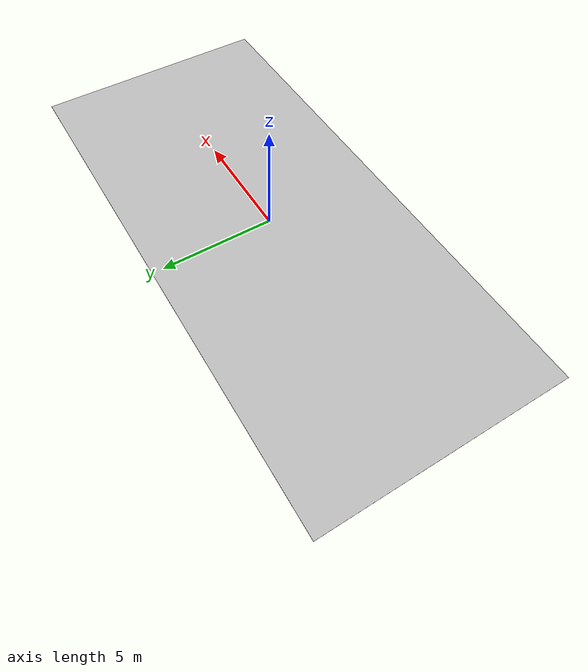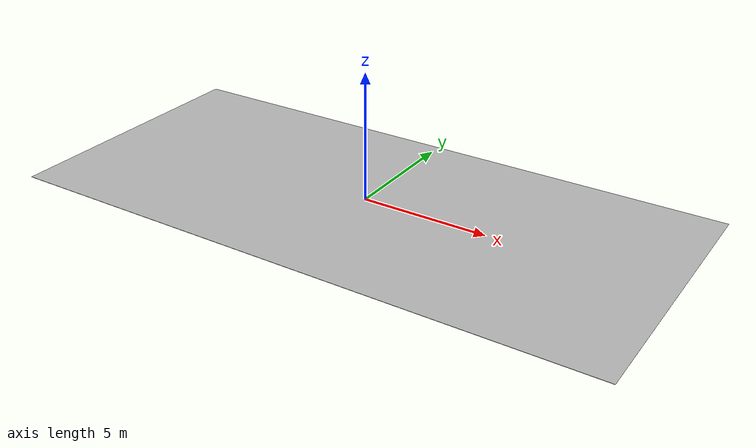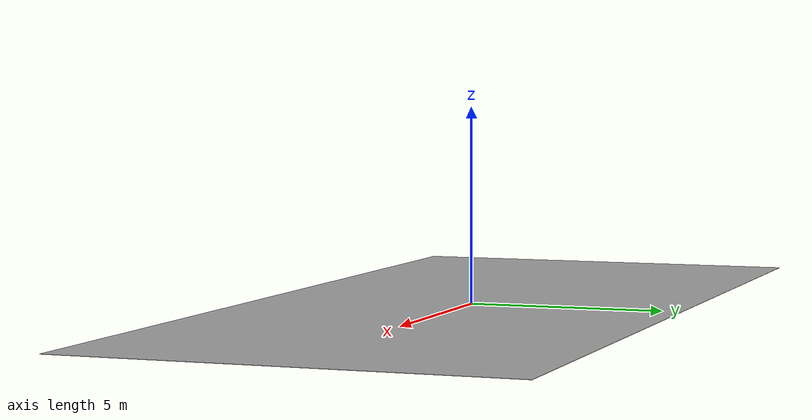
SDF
<?xml version="1.0" encoding="UTF-8"?>
<sdf version="1.4">
   <model name="tennis_court">
      <static>true</static>
      <link name="link">
         <visual name="visual">
            <cast_shadows>false</cast_shadows>
            <geometry>
               <plane>
                  <normal>0 0 0</normal>
                  <size>23.78 10.97</size>
               </plane>
            </geometry>
            <material>
               <script>
                  <uri>model://tennis_court/materials/scripts</uri>
                  <uri>model://tennis_court/materials/textures/</uri>
                  <name>tennis_court/Image</name>
               </script>
            </material>
         </visual>
      </link>
   </model>
</sdf>
